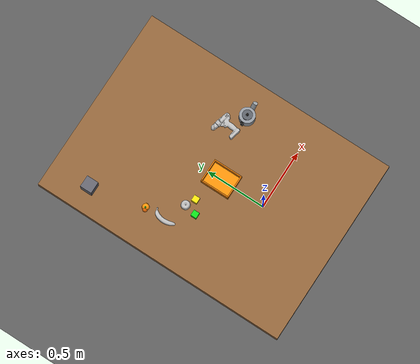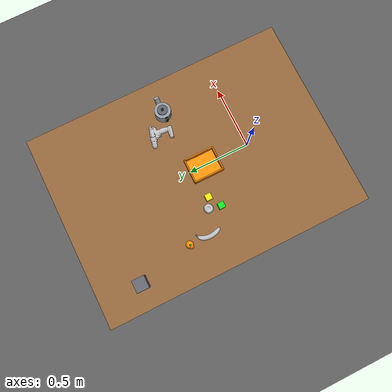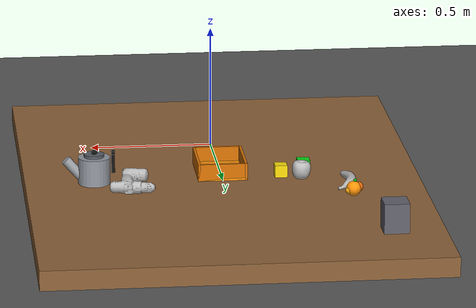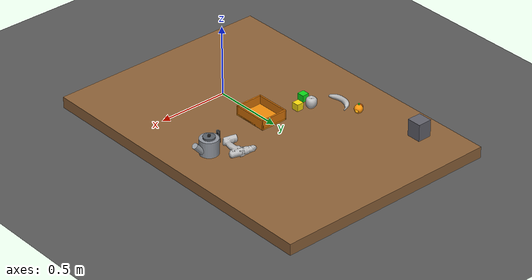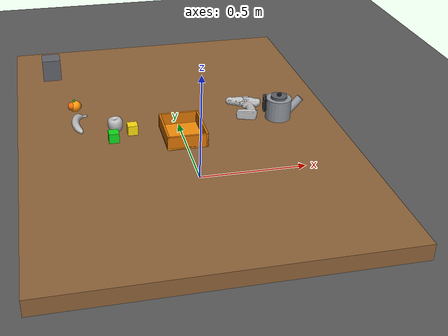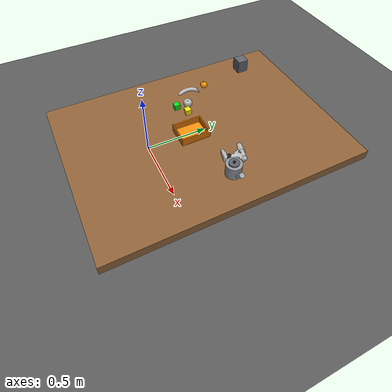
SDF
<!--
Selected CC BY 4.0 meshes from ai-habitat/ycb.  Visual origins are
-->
<sdf version="1.7">
 <world name="ur3_pick_place">
  <model name="ground_plane">
   <static>true</static>
   <pose>0 0 -0.081 0 0 0</pose>
   <link name="link">
    <collision name="collision">
     <geometry><plane><normal>0 0 1</normal><size>10 10</size></plane></geometry>
    </collision>
    <visual name="visual">
     <geometry><plane><normal>0 0 1</normal><size>10 10</size></plane></geometry>
     <material><ambient>0.25 0.25 0.25 1</ambient><diffuse>0.35 0.35 0.35 1</diffuse></material>
    </visual>
   </link>
   <plugin filename="ignition-gazebo-label-system" name="ignition::gazebo::systems::Label">
    <label>41</label>
   </plugin>
  </model>
  <model name="work_table">
   <static>true</static>
   <pose>0 0.45 -0.04 0 0 0</pose>
   <link name="table_link">
    <collision name="collision"><geometry><box><size>1.6 2.2 0.08</size></box></geometry></collision>
    <visual name="visual">
     <geometry><box><size>1.6 2.2 0.08</size></box></geometry>
     <material><ambient>0.45 0.30 0.18 1</ambient><diffuse>0.55 0.38 0.22 1</diffuse></material>
    </visual>
   </link>
   <plugin filename="ignition-gazebo-label-system" name="ignition::gazebo::systems::Label">
    <label>40</label>
   </plugin>
  </model>
  <model name="top_table_camera">
   <static>true</static>
   <pose>0 0.45 1.80 0 1.57079632679 0</pose>
   <link name="top_table_camera_link">
    <sensor name="top_table_rgbd" type="rgbd_camera">
     <camera>
      <horizontal_fov>1.10</horizontal_fov>
      <image><width>640</width><height>480</height><format>R8G8B8</format></image>
      <clip><near>0.10</near><far>3.0</far></clip>
      <depth_camera><clip><near>0.10</near><far>3.0</far></clip></depth_camera>
      <optical_frame_id>top_table_camera_optical_frame</optical_frame_id>
     </camera>
     <always_on>true</always_on>
     <update_rate>30</update_rate>
     <visualize>true</visualize>
     <topic>/top_table_camera</topic>
     <gz_frame_id>top_table_camera_optical_frame</gz_frame_id>
    </sensor>
   </link>
  </model>
  <model name="opposite_table_camera">
   <static>true</static>
   <pose>0 1.90 0.65 0 0.17 -1.57079632679</pose>
   <link name="opposite_table_camera_link">
    <sensor name="opposite_table_rgbd" type="rgbd_camera">
     <camera>
      <horizontal_fov>1.30</horizontal_fov>
      <image><width>640</width><height>480</height><format>R8G8B8</format></image>
      <clip><near>0.10</near><far>3.0</far></clip>
      <depth_camera><clip><near>0.10</near><far>3.0</far></clip></depth_camera>
      <optical_frame_id>opposite_table_camera_optical_frame</optical_frame_id>
     </camera>
     <always_on>true</always_on>
     <update_rate>30</update_rate>
     <visualize>true</visualize>
     <topic>/opposite_table_camera</topic>
     <gz_frame_id>opposite_table_camera_optical_frame</gz_frame_id>
    </sensor>
   </link>
  </model>
  <model name="green_cube">
   <pose>-0.34 0.40 0.025 0 0 0</pose>
   <link name="cube_link">
    <inertial>
     <mass>0.06</mass>
     <inertia><ixx>0.000025</ixx><iyy>0.000025</iyy><izz>0.000025</izz></inertia>
    </inertial>
    <collision name="collision"><geometry><box><size>0.05 0.05 0.05</size></box></geometry></collision>
    <visual name="visual">
     <geometry><box><size>0.05 0.05 0.05</size></box></geometry>
     <material><ambient>0.03 0.65 0.08 1</ambient><diffuse>0.05 0.85 0.10 1</diffuse></material>
    </visual>
   </link>
   <plugin filename="ignition-gazebo-label-system" name="ignition::gazebo::systems::Label">
    <label>3</label>
   </plugin>
  </model>
  <model name="yellow_cube">
   <pose>-0.24 0.46 0.025 0 0 0</pose>
   <link name="cube_link">
    <inertial>
     <mass>0.06</mass>
     <inertia><ixx>0.000025</ixx><iyy>0.000025</iyy><izz>0.000025</izz></inertia>
    </inertial>
    <collision name="collision"><geometry><box><size>0.05 0.05 0.05</size></box></geometry></collision>
    <visual name="visual">
     <geometry><box><size>0.05 0.05 0.05</size></box></geometry>
     <material><ambient>0.80 0.68 0.02 1</ambient><diffuse>0.98 0.86 0.04 1</diffuse></material>
    </visual>
   </link>
   <plugin filename="ignition-gazebo-label-system" name="ignition::gazebo::systems::Label">
    <label>4</label>
   </plugin>
  </model>
  <model name="ycb_banana">
   <pose>-0.48 0.58 0.018376 0 0 0.25</pose>
   <link name="object_link">
    <inertial>
     <mass>0.12</mass>
     <inertia><ixx>0.00033</ixx><iyy>0.00013</iyy><izz>0.00044</izz></inertia>
    </inertial>
    <collision name="collision">
     <geometry><box><size>0.108971 0.178395 0.036752</size></box></geometry>
     <surface><friction><ode><mu>1.1</mu><mu2>1.1</mu2></ode></friction></surface>
    </collision>
    <visual name="ycb_visual">
     <pose>-0.011491 0.007339 -0.017956 0 0 0</pose>
     <geometry><mesh><uri>../models/ycb/011_banana/011_banana.obj</uri></mesh></geometry>
    </visual>
   </link>
   <plugin filename="ignition-gazebo-pose-publisher-system" name="gz::sim::systems::PosePublisher">
    <publish_link_pose>false</publish_link_pose>
    <publish_collision_pose>false</publish_collision_pose>
    <publish_visual_pose>false</publish_visual_pose>
    <publish_nested_model_pose>false</publish_nested_model_pose>
    <use_pose_vector_msg>true</use_pose_vector_msg>
    <static_publisher>false</static_publisher>
    <update_frequency>15</update_frequency>
   </plugin>
   <plugin filename="ignition-gazebo-label-system" name="ignition::gazebo::systems::Label">
    <label>25</label>
   </plugin>
  </model>
  <model name="ycb_apple">
   <pose>-0.32 0.50 0.035953 0 0 0</pose>
   <link name="object_link">
    <inertial>
     <mass>0.12</mass>
     <inertia><ixx>0.00007</ixx><iyy>0.00007</iyy><izz>0.00007</izz></inertia>
    </inertial>
    <collision name="collision">
     <geometry><sphere><radius>0.03771</radius></sphere></geometry>
     <surface><friction><ode><mu>1.1</mu><mu2>1.1</mu2></ode></friction></surface>
    </collision>
    <visual name="ycb_visual">
     <pose>-0.000863 0.003786 -0.035541 0 0 0</pose>
     <geometry><mesh><uri>../models/ycb/013_apple/013_apple.obj</uri></mesh></geometry>
    </visual>
   </link>
   <plugin filename="ignition-gazebo-pose-publisher-system" name="gz::sim::systems::PosePublisher">
    <publish_link_pose>false</publish_link_pose>
    <publish_collision_pose>false</publish_collision_pose>
    <publish_visual_pose>false</publish_visual_pose>
    <publish_nested_model_pose>false</publish_nested_model_pose>
    <use_pose_vector_msg>true</use_pose_vector_msg>
    <static_publisher>false</static_publisher>
    <update_frequency>15</update_frequency>
   </plugin>
   <plugin filename="ignition-gazebo-label-system" name="ignition::gazebo::systems::Label">
    <label>26</label>
   </plugin>
  </model>
  <model name="ycb_power_drill">
   <pose>0.36 0.57 0.028689 0 0 -0.25</pose>
   <link name="object_link">
    <inertial>
     <mass>0.45</mass>
     <inertia><ixx>0.00137</ixx><iyy>0.00139</iyy><izz>0.00258</izz></inertia>
    </inertial>
    <collision name="collision">
     <geometry><box><size>0.183995 0.187244 0.057377</size></box></geometry>
     <surface><friction><ode><mu>1.1</mu><mu2>1.1</mu2></ode></friction></surface>
    </collision>
    <visual name="ycb_visual">
     <pose>0.045866 -0.010493 -0.025266 0 0 0</pose>
     <geometry><mesh><uri>../models/ycb/035_power_drill/035_power_drill.obj</uri></mesh></geometry>
    </visual>
   </link>
   <plugin filename="ignition-gazebo-pose-publisher-system" name="gz::sim::systems::PosePublisher">
    <publish_link_pose>false</publish_link_pose>
    <publish_collision_pose>false</publish_collision_pose>
    <publish_visual_pose>false</publish_visual_pose>
    <publish_nested_model_pose>false</publish_nested_model_pose>
    <use_pose_vector_msg>true</use_pose_vector_msg>
    <static_publisher>false</static_publisher>
    <update_frequency>15</update_frequency>
   </plugin>
   <plugin filename="ignition-gazebo-label-system" name="ignition::gazebo::systems::Label">
    <label>28</label>
   </plugin>
  </model>
  <model name="mango">
   <pose>-0.50 0.75 0.030 0 0 0.35</pose>
   <link name="mango_link">
    <inertial>
     <mass>0.16</mass>
     <inertia><ixx>0.000060</ixx><iyy>0.000060</iyy><izz>0.000060</izz></inertia>
    </inertial>
    <collision name="fruit_collision"><geometry><sphere><radius>0.030</radius></sphere></geometry></collision>
    <visual name="mango_body">
     <geometry><sphere><radius>0.030</radius></sphere></geometry>
     <material><ambient>0.92 0.38 0.01 1</ambient><diffuse>1.0 0.58 0.03 1</diffuse></material>
    </visual>
    <visual name="mango_lobe">
     <pose>-0.019 0 0.004 0 0 0</pose>
     <geometry><sphere><radius>0.021</radius></sphere></geometry>
     <material><ambient>0.74 0.25 0.01 1</ambient><diffuse>0.95 0.43 0.02 1</diffuse></material>
    </visual>
    <visual name="mango_tip">
     <pose>0.021 0 -0.005 0 0 0</pose>
     <geometry><sphere><radius>0.014</radius></sphere></geometry>
     <material><ambient>0.96 0.56 0.03 1</ambient><diffuse>1.0 0.67 0.05 1</diffuse></material>
    </visual>
    <visual name="mango_leaf">
     <pose>-0.006 0 0.032 0 0.45 0</pose>
     <geometry><sphere><radius>0.007</radius></sphere></geometry>
     <material><ambient>0.05 0.40 0.04 1</ambient><diffuse>0.07 0.65 0.07 1</diffuse></material>
    </visual>
   </link>
   <plugin filename="ignition-gazebo-label-system" name="ignition::gazebo::systems::Label">
    <label>29</label>
   </plugin>
  </model>
  <model name="kettle">
   <static>true</static>
   <pose>0.52 0.48 0.055 0 0 0</pose>
   <link name="kettle_link">
    <collision name="body_collision">
     <geometry><cylinder><radius>0.065</radius><length>0.110</length></cylinder></geometry>
    </collision>
    <visual name="steel_body">
     <geometry><cylinder><radius>0.065</radius><length>0.110</length></cylinder></geometry>
     <material>
      <ambient>0.34 0.36 0.38 1</ambient>
      <diffuse>0.56 0.58 0.61 1</diffuse>
      <specular>0.75 0.75 0.75 1</specular>
     </material>
    </visual>
    <visual name="lid">
     <pose>0 0 0.062 0 0 0</pose>
     <geometry><cylinder><radius>0.041</radius><length>0.012</length></cylinder></geometry>
     <material><ambient>0.18 0.20 0.22 1</ambient><diffuse>0.35 0.37 0.40 1</diffuse></material>
    </visual>
    <visual name="lid_knob">
     <pose>0 0 0.074 0 0 0</pose>
     <geometry><sphere><radius>0.012</radius></sphere></geometry>
     <material><ambient>0.04 0.04 0.04 1</ambient><diffuse>0.08 0.08 0.08 1</diffuse></material>
    </visual>
    <visual name="spout">
     <pose>0.085 0 0.012 0 0.72 0</pose>
     <geometry><cylinder><radius>0.020</radius><length>0.090</length></cylinder></geometry>
     <material><ambient>0.38 0.40 0.42 1</ambient><diffuse>0.62 0.64 0.66 1</diffuse></material>
    </visual>
    <visual name="handle_left">
     <pose>-0.076 0 0.030 0 0 0</pose>
     <geometry><box><size>0.014 0.022 0.080</size></box></geometry>
     <material><ambient>0.03 0.03 0.03 1</ambient><diffuse>0.07 0.07 0.07 1</diffuse></material>
    </visual>
    <visual name="handle_top">
     <pose>-0.076 0 0.072 0 0 0</pose>
     <geometry><box><size>0.014 0.022 0.014</size></box></geometry>
     <material><ambient>0.03 0.03 0.03 1</ambient><diffuse>0.07 0.07 0.07 1</diffuse></material>
    </visual>
   </link>
   <plugin filename="ignition-gazebo-label-system" name="ignition::gazebo::systems::Label">
    <label>31</label>
   </plugin>
  </model>
  <model name="target_bin">
   <static>true</static>
   <pose>0 0.38 0 0 0 0</pose>
   <link name="bin_link">
    <collision name="floor_collision">
     <pose>0 0 0.005 0 0 0</pose>
     <geometry><box><size>0.20 0.25 0.01</size></box></geometry>
    </collision>
    <visual name="floor_visual">
     <pose>0 0 0.005 0 0 0</pose>
     <geometry><box><size>0.20 0.25 0.01</size></box></geometry>
     <material><ambient>0.85 0.45 0.02 1</ambient><diffuse>0.95 0.55 0.03 1</diffuse></material>
    </visual>
    <collision name="front_collision">
     <pose>0.095 0 0.035 0 0 0</pose>
     <geometry><box><size>0.01 0.25 0.07</size></box></geometry>
    </collision>
    <visual name="front_visual">
     <pose>0.095 0 0.035 0 0 0</pose>
     <geometry><box><size>0.01 0.25 0.07</size></box></geometry>
     <material><ambient>0.85 0.45 0.02 1</ambient></material>
    </visual>
    <collision name="back_collision">
     <pose>-0.095 0 0.035 0 0 0</pose>
     <geometry><box><size>0.01 0.25 0.07</size></box></geometry>
    </collision>
    <visual name="back_visual">
     <pose>-0.095 0 0.035 0 0 0</pose>
     <geometry><box><size>0.01 0.25 0.07</size></box></geometry>
     <material><ambient>0.85 0.45 0.02 1</ambient></material>
    </visual>
    <collision name="left_collision">
     <pose>0 0.12 0.035 0 0 0</pose>
     <geometry><box><size>0.20 0.01 0.07</size></box></geometry>
    </collision>
    <visual name="left_visual">
     <pose>0 0.12 0.035 0 0 0</pose>
     <geometry><box><size>0.20 0.01 0.07</size></box></geometry>
     <material><ambient>0.85 0.45 0.02 1</ambient></material>
    </visual>
    <collision name="right_collision">
     <pose>0 -0.12 0.035 0 0 0</pose>
     <geometry><box><size>0.20 0.01 0.07</size></box></geometry>
    </collision>
    <visual name="right_visual">
     <pose>0 -0.12 0.035 0 0 0</pose>
     <geometry><box><size>0.20 0.01 0.07</size></box></geometry>
     <material><ambient>0.85 0.45 0.02 1</ambient></material>
    </visual>
   </link>
   <plugin filename="ignition-gazebo-label-system" name="ignition::gazebo::systems::Label">
    <label>32</label>
   </plugin>
  </model>
  <model name="uq_neutral_occluder">
   <static>true</static>
   <pose>-0.60 1.20 0.060 0 0 0</pose>
   <link name="occluder_link">
    <visual name="neutral_panel">
     <geometry><box><size>0.100 0.100 0.120</size></box></geometry>
     <material>
      <ambient>0.24 0.24 0.26 1</ambient>
      <diffuse>0.38 0.38 0.42 1</diffuse>
      <specular>0.05 0.05 0.05 1</specular>
     </material>
    </visual>
   </link>
   <plugin filename="ignition-gazebo-label-system" name="ignition::gazebo::systems::Label">
    <label>39</label>
   </plugin>
  </model>
 </world>
</sdf>
